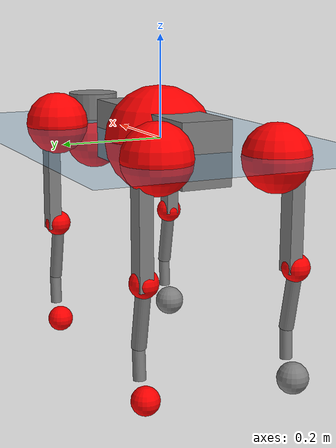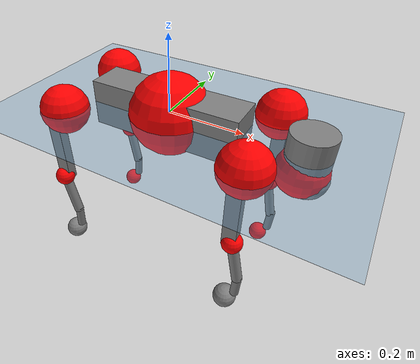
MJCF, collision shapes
<mujoco model="go2">
  <compiler angle="radian" assetdir="assets" balanceinertia="true" inertiafromgeom="false"/>

  <option timestep="0.005" density="1.2" viscosity="2e-05"/>

  <size nkey="1"/>

  <visual>
    <quality shadowsize="8192"/>
    <map shadowclip="0.5"/>
  </visual>

  <default>
    <default class="/">
      <geom contype="0" conaffinity="0" group="1" solref="-1000 -80"/>
      <site size="0.01 0.005 0.005" group="5"/>
      <general forcelimited="true" biastype="affine" gainprm="20" biasprm="0 -20 -0.5"/>
      <default class="go2">
        <joint armature="0.01" damping="0.01" frictionloss="0.2"/>
        <geom condim="1" margin="0.001"/>
        <default class="visual">
          <geom type="mesh" group="2"/>
        </default>
        <default class="collision">
          <geom group="3"/>
          <default class="foot">
            <geom size="0.022 0 0" condim="6" priority="1" friction="0.8 0.02 0.01" solimp="0.015 1 0.022"/>
          </default>
        </default>
        <default class="reward_collision_sphere">
          <geom group="5" rgba="1 0 0 1"/>
        </default>
      </default>
    </default>
  </default>

  <asset>
    <texture type="skybox" colorspace="auto" name="//unnamed_texture_0" builtin="gradient" rgb1="0.95 0.95 0.95" rgb2="0.95 0.95 0.95" width="100" height="600"/>
    <texture type="2d" colorspace="auto" name="texplane" builtin="checker" rgb1="0.345 0.575 0.748" rgb2="0.345 0.575 0.748" markrgb="1 1 1" width="512" height="512"/>
    <material name="MatPlane" class="/" texture="texplane" texuniform="true" texrepeat="2 2" specular="0.9"/>
    <material name="metal" class="/" rgba="0.9 0.95 0.95 1"/>
    <material name="black" class="/" rgba="0 0 0 1"/>
    <material name="white" class="/"/>
    <material name="gray" class="/" rgba="0.671705 0.692426 0.77427 1"/>
    <mesh name="base_0" class="/" file="base_0.obj"/>
    <mesh name="base_1" class="/" file="base_1.obj"/>
    <mesh name="base_2" class="/" file="base_2.obj"/>
    <mesh name="base_3" class="/" file="base_3.obj"/>
    <mesh name="base_4" class="/" file="base_4.obj"/>
    <mesh name="hip_0" class="/" file="hip_0.obj"/>
    <mesh name="hip_1" class="/" file="hip_1.obj"/>
    <mesh name="thigh_0" class="/" file="thigh_0.obj"/>
    <mesh name="thigh_1" class="/" file="thigh_1.obj"/>
    <mesh name="thigh_mirror_0" class="/" file="thigh_mirror_0.obj"/>
    <mesh name="thigh_mirror_1" class="/" file="thigh_mirror_1.obj"/>
    <mesh name="calf_0" class="/" file="calf_0.obj"/>
    <mesh name="calf_1" class="/" file="calf_1.obj"/>
    <mesh name="calf_mirror_0" class="/" file="calf_mirror_0.obj"/>
    <mesh name="calf_mirror_1" class="/" file="calf_mirror_1.obj"/>
    <mesh name="foot" class="/" file="foot.obj"/>
  </asset>

  <worldbody>
    <geom name="floor" class="/" size="100 100 0.125" type="plane" group="0" material="MatPlane"/>
    <light name="toplight_shadow" class="/" pos="0 0 5" dir="0.0990148 0.0990148 -0.990148" type="directional" ambient="0.04 0.04 0.04" diffuse="0.55 0.55 0.55" specular="0.12 0.12 0.12"/>
    <light name="toplight_fill" class="/" pos="0 0 5" dir="0.0990148 0.0990148 -0.990148" type="directional" castshadow="false" ambient="0.04 0.04 0.04" diffuse="0.3 0.3 0.3" specular="0.08 0.08 0.08"/>
    <body name="trunk" childclass="go2" pos="0.00249584 0.00107283 -0.00376748" quat="0.999997 -0.000960413 -0.000273665 0.00230006">
      <inertial pos="0.0395901 0.0104488 -0.000618205" quat="-0.00449337 0.713905 0.00716992 0.700191" mass="7.23386" diaginertia="0.311881 0.0821608 0.0252925"/>
      <joint name="//unnamed_joint_0" type="free" armature="0" damping="0" frictionloss="0"/>
      <geom name="//unnamed_geom_1" class="visual" material="black" mesh="base_0"/>
      <geom name="//unnamed_geom_2" class="visual" material="black" mesh="base_1"/>
      <geom name="//unnamed_geom_3" class="visual" material="black" mesh="base_2"/>
      <geom name="//unnamed_geom_4" class="visual" material="white" mesh="base_3"/>
      <geom name="//unnamed_geom_5" class="visual" material="gray" mesh="base_4"/>
      <geom name="trunk_1" class="collision" size="0.201286 0.0500273 0.0609958" type="box"/>
      <geom name="trunk_2" class="collision" size="0.0535051 0.0481546" pos="0.351505 0 0.0100945" type="cylinder"/>
      <geom name="trunk_3" class="collision" size="0.0502948" pos="0.361372 0 -0.060567"/>
      <geom name="//unnamed_geom_9" class="reward_collision_sphere" size="0.10701"/>
      <geom name="//unnamed_geom_10" class="reward_collision_sphere" size="0.0642061" pos="0.345338 0 -0.0454253"/>
      <site name="imu" pos="-0.0895633 0.000836789 0.100467" size="0.010701"/>
      <camera name="track" pos="0 -1.93501 0" quat="0.707107 0.707107 0 0" mode="trackcom"/>
      <camera name="ego_camera" pos="0.384805 0 0.0454253" quat="-0.5 -0.5 0.5 0.5"/>
      <body name="FL_hip" pos="0.247615 0.0545354 0.00916936" quat="1 7.64166e-05 0.000140417 0.000108157">
        <inertial pos="-0.00606357 0.0107142 -0.000356759" quat="0.49885 0.497322 0.505682 0.498101" mass="0.900951" diaginertia="0.00300284 0.000661388 0.000594607"/>
        <joint name="FL_hip_joint" pos="0 0 0" axis="0.999637 0.0156908 0.021911" stiffness="0.0377553" range="-1.04845 0.953731" armature="0.0112762" damping="0" frictionloss="0.295879"/>
        <geom name="//unnamed_geom_11" class="visual" material="metal" mesh="hip_0"/>
        <geom name="//unnamed_geom_12" class="visual" material="gray" mesh="hip_1"/>
        <geom name="//unnamed_geom_13" class="collision" size="0.0492247 0.021402" pos="0 0.0774004 0" quat="0.707107 0.707107 0 0" type="cylinder"/>
        <geom name="//unnamed_geom_14" class="reward_collision_sphere" size="0.0642061" pos="0 0.0677254 0"/>
        <body name="FL_thigh" pos="0.00654633 0.0800031 -0.00583398" quat="0.999985 0.0024204 0.00460492 0.00175666">
          <inertial pos="-0.00322506 -0.0211329 -0.0391864" quat="0.820006 0.0606732 -0.0542091 0.566543" mass="1.54976" diaginertia="0.016816 0.00573262 0.000882507"/>
          <joint name="FL_thigh_joint" pos="0 0 0" axis="0.0099664 0.999949 -0.00170414" range="-1.78215 3.34005" armature="0.0120407" damping="0" frictionloss="0.282853"/>
          <geom name="//unnamed_geom_15" class="visual" material="metal" mesh="thigh_0"/>
          <geom name="//unnamed_geom_16" class="visual" material="gray" mesh="thigh_1"/>
          <geom name="//unnamed_geom_17" class="collision" size="0.113966 0.0131088 0.0181917" pos="0 0 -0.107507" quat="0.707107 0 0.707107 0" type="box"/>
          <body name="FL_calf" pos="-0.00114885 -0.0109494 -0.211535" quat="0.999999 -4.5816e-06 0.00106074 -0.000181597">
            <inertial pos="0.00623716 -0.0022601 -0.137361" quat="0.708926 0.00355261 -0.010594 0.705195" mass="0.305655" diaginertia="0.00485097 0.00126074 5.53245e-05"/>
            <joint name="FL_calf_joint" pos="0 0 0" axis="0.00159033 0.999999 -0.000235527" stiffness="0.0508949" range="-2.872 -0.808033" armature="0.0089541" damping="0.0116148" frictionloss="0.229326"/>
            <geom name="//unnamed_geom_18" class="visual" material="gray" mesh="calf_0"/>
            <geom name="//unnamed_geom_19" class="visual" material="black" mesh="calf_1"/>
            <geom name="FL_calf0" class="collision" size="0.0128412 0.0642061" pos="0.00986681 0 -0.060567" quat="0.994493 0 -0.104807 0" type="cylinder"/>
            <geom name="//unnamed_geom_21" class="collision" size="0.0117711 0.0347783" pos="0.024667 0 -0.149399" quat="0.999688 0 0.0249974 0" type="cylinder"/>
            <geom name="//unnamed_geom_22" class="visual" pos="0 0 -0.215013" quat="1 0 0 0" material="black" mesh="foot"/>
            <geom name="FL_foot" class="foot" size="0.025591" pos="-0.0024667 0 -0.215013"/>
            <geom name="//unnamed_geom_24" class="reward_collision_sphere" size="0.0267526"/>
            <geom name="//unnamed_geom_25" class="reward_collision_sphere" size="0.0267526" pos="-0.0024667 0 -0.215013"/>
            <site name="FL_foot" class="foot" pos="-0.0024667 0 -0.215013" size="0.010701"/>
          </body>
        </body>
      </body>
      <body name="FR_hip" pos="0.250429 -0.0509786 0.00208685" quat="0.999999 -0.000924417 -4.09596e-05 -0.000944013">
        <inertial pos="0.000518321 0.0119341 0.00739711" quat="0.504481 0.53799 0.509264 0.443526" mass="0.815491" diaginertia="0.00277885 0.000427127 0.000550513"/>
        <joint name="FR_hip_joint" pos="0 0 0" axis="0.998878 -0.0131138 -0.0455058" range="-1.06743 1.0107" armature="0.0108085" damping="0.0483734" frictionloss="0.17072"/>
        <geom name="//unnamed_geom_26" class="visual" pos="0 -3.65413e-10 -1.56733e-08" quat="4.63268e-05 1 0 0" material="metal" mesh="hip_0"/>
        <geom name="//unnamed_geom_27" class="visual" pos="0 -5.92378e-10 3.87661e-08" quat="4.63268e-05 1 0 0" material="gray" mesh="hip_1"/>
        <geom name="//unnamed_geom_28" class="collision" size="0.0492247 0.021402" pos="0 -0.0774004 0" quat="0.707107 0.707107 0 0" type="cylinder"/>
        <geom name="//unnamed_geom_29" class="reward_collision_sphere" size="0.0642061" pos="0 -0.0677254 0"/>
        <body name="FR_thigh" pos="-0.00617112 -0.0862781 0.0100293" quat="0.999988 -0.00336255 -0.00297915 0.00213939">
          <inertial pos="-0.0163483 0.0247559 -0.0265555" quat="0.532396 -0.0283833 0.109177 0.838945" mass="1.27224" diaginertia="0.0188442 0.00566325 0.000800991"/>
          <joint name="FR_thigh_joint" pos="0 0 0" axis="-0.00128969 -0.999703 -0.0243386" range="-3.5659 1.60164" armature="0.014312" damping="0" frictionloss="0.164057"/>
          <geom name="//unnamed_geom_30" class="visual" material="metal" mesh="thigh_mirror_0"/>
          <geom name="//unnamed_geom_31" class="visual" material="gray" mesh="thigh_mirror_1"/>
          <geom name="//unnamed_geom_32" class="collision" size="0.113966 0.0131088 0.0181917" pos="0 0 -0.107507" quat="0.707107 0 0.707107 0" type="box"/>
          <body name="FR_calf" pos="0.00663343 -0.00209576 -0.217206" quat="0.999995 0.000690334 -0.00153157 -0.00276231">
            <inertial pos="0.0167433 0.000686417 -0.142065" quat="0.671781 0.025664 0.0361749 0.739421" mass="0.240142" diaginertia="0.00355018 0.00116914 5.01641e-05"/>
            <joint name="FR_calf_joint" pos="0 0 0" axis="-0.0122 -0.999638 0.0239933" stiffness="0.0573688" range="1.07595 2.8588" armature="0.00523659" damping="0" frictionloss="0.159839"/>
            <geom name="//unnamed_geom_33" class="visual" material="gray" mesh="calf_mirror_0"/>
            <geom name="//unnamed_geom_34" class="visual" material="black" mesh="calf_mirror_1"/>
            <geom name="FR_calf0" class="collision" size="0.0139113 0.0642061" pos="0.0123335 0 -0.060567" quat="0.995004 0 -0.0998334 0" type="cylinder"/>
            <geom name="//unnamed_geom_36" class="collision" size="0.0117711 0.0347783" pos="0.024667 0 -0.149399" quat="0.999688 0 0.0249974 0" type="cylinder"/>
            <geom name="//unnamed_geom_37" class="visual" pos="0 0 -0.215013" quat="1 0 0 0" material="black" mesh="foot"/>
            <geom name="FR_foot" class="foot" size="0.0315736" pos="-0.0024667 0 -0.215013"/>
            <geom name="//unnamed_geom_39" class="reward_collision_sphere" size="0.0267526"/>
            <geom name="//unnamed_geom_40" class="reward_collision_sphere" size="0.0267526" pos="-0.0024667 0 -0.215013"/>
            <site name="FR_foot" class="foot" pos="-0.0024667 0 -0.215013" size="0.010701"/>
          </body>
        </body>
      </body>
      <body name="RL_hip" pos="-0.249224 0.0529012 0.0105879" quat="1 -0.000610496 -0.000357918 0.00028269">
        <inertial pos="0.00625666 -0.00599627 0.0123" quat="0.46638 0.501971 0.52001 0.510004" mass="0.704199" diaginertia="0.00177374 0.000439886 0.000460275"/>
        <joint name="RL_hip_joint" pos="0 0 0" axis="-0.998898 0.0447605 -0.0141023" stiffness="0.0239628" range="-1.07431 0.970576" armature="0.0102282" damping="0.0636627" frictionloss="0.211338"/>
        <geom name="//unnamed_geom_41" class="visual" pos="-1.95052e-09 0 -3.82348e-07" quat="4.63268e-05 0 1 0" material="metal" mesh="hip_0"/>
        <geom name="//unnamed_geom_42" class="visual" pos="-3.16203e-09 0 -3.39088e-07" quat="4.63268e-05 0 1 0" material="gray" mesh="hip_1"/>
        <geom name="//unnamed_geom_43" class="collision" size="0.0492247 0.021402" pos="0 0.0774004 0" quat="0.707107 0.707107 0 0" type="cylinder"/>
        <geom name="//unnamed_geom_44" class="reward_collision_sphere" size="0.0642061" pos="0 0.0677254 0"/>
        <body name="RL_thigh" pos="-0.00119542 0.0969761 -0.00514152" quat="0.999998 -0.00109753 0.00172342 3.00353e-05">
          <inertial pos="0.00892203 -0.0252144 -0.0206601" quat="0.828937 0.0778884 -0.0189158 0.553569" mass="1.64213" diaginertia="0.0217356 0.00490375 0.000962724"/>
          <joint name="RL_thigh_joint" pos="0 0 0" axis="0.0166076 0.999827 0.00837128" range="-0.408325 4.68874" armature="0.00976509" damping="0.0517392" frictionloss="0.206718"/>
          <geom name="//unnamed_geom_45" class="visual" material="metal" mesh="thigh_0"/>
          <geom name="//unnamed_geom_46" class="visual" material="gray" mesh="thigh_1"/>
          <geom name="//unnamed_geom_47" class="collision" size="0.113966 0.0131088 0.0181917" pos="0 0 -0.107507" quat="0.707107 0 0.707107 0" type="box"/>
          <body name="RL_calf" pos="0.00443656 -0.00437071 -0.210476" quat="1 4.61764e-06 2.70434e-05 -0.000443796">
            <inertial pos="0.00198177 -0.0112759 -0.139309" quat="0.728446 0.0260249 -0.00658608 0.684577" mass="0.24334" diaginertia="0.00386555 0.000894684 4.43171e-05"/>
            <joint name="RL_calf_joint" pos="0 0 0" axis="0.00450626 0.999989 0.00114064" range="-2.92882 -0.678662" armature="0.00456506" damping="0" frictionloss="0.318704"/>
            <geom name="//unnamed_geom_48" class="visual" material="gray" mesh="calf_0"/>
            <geom name="//unnamed_geom_49" class="visual" material="black" mesh="calf_1"/>
            <geom name="RL_calf0" class="collision" size="0.0139113 0.0642061" pos="0.0123335 0 -0.060567" quat="0.995004 0 -0.0998334 0" type="cylinder"/>
            <geom name="//unnamed_geom_51" class="collision" size="0.0117711 0.0347783" pos="0.024667 0 -0.149399" quat="0.999688 0 0.0249974 0" type="cylinder"/>
            <geom name="//unnamed_geom_52" class="visual" pos="0 0 -0.215013" quat="1 0 0 0" material="black" mesh="foot"/>
            <geom name="RL_foot" class="foot" size="0.0196908" pos="-0.0024667 0 -0.215013"/>
            <geom name="//unnamed_geom_54" class="reward_collision_sphere" size="0.0267526"/>
            <geom name="//unnamed_geom_55" class="reward_collision_sphere" size="0.0267526" pos="-0.0024667 0 -0.215013"/>
            <site name="RL_foot" class="foot" pos="-0.0024667 0 -0.215013" size="0.010701"/>
          </body>
        </body>
      </body>
      <body name="RR_hip" pos="-0.252111 -0.0444109 -0.00463163" quat="1 -0.000166459 -0.000132137 -7.98629e-05">
        <inertial pos="0.0134297 -0.00797457 0.0120753" quat="0.481137 0.491673 0.55409 0.468775" mass="0.849427" diaginertia="0.00297445 0.000599171 0.000580871"/>
        <joint name="RR_hip_joint" pos="0 0 0" axis="-0.99838 0.00415877 -0.0567514" stiffness="0.00180229" range="-0.829606 0.927409" armature="0.0132317" damping="0.0390094" frictionloss="0.218065"/>
        <geom name="//unnamed_geom_56" class="visual" pos="1.94132e-09 -3.65413e-10 -3.66674e-07" quat="2.14617e-09 4.63268e-05 4.63268e-05 -1" material="metal" mesh="hip_0"/>
        <geom name="//unnamed_geom_57" class="visual" pos="3.1848e-09 -5.92378e-10 -3.77854e-07" quat="2.14617e-09 4.63268e-05 4.63268e-05 -1" material="gray" mesh="hip_1"/>
        <geom name="//unnamed_geom_58" class="collision" size="0.0492247 0.021402" pos="0 -0.0774004 0" quat="0.707107 0.707107 0 0" type="cylinder"/>
        <geom name="//unnamed_geom_59" class="reward_collision_sphere" size="0.0642061" pos="0 -0.0677254 0"/>
        <body name="RR_thigh" pos="-0.0124632 -0.0964555 0.0108539" quat="0.999987 0.000541231 -0.00434003 0.00243666">
          <inertial pos="-0.00363655 0.0149223 -0.0351916" quat="0.555174 -0.0224725 0.0857149 0.827001" mass="1.70603" diaginertia="0.0205434 0.00537759 0.00101"/>
          <joint name="RR_thigh_joint" pos="0 0 0" axis="-0.00476643 -0.999971 0.00594739" stiffness="0.00156637" range="-4.67312 0.587828" armature="0.0113855" damping="0" frictionloss="0.199139"/>
          <geom name="//unnamed_geom_60" class="visual" material="metal" mesh="thigh_mirror_0"/>
          <geom name="//unnamed_geom_61" class="visual" material="gray" mesh="thigh_mirror_1"/>
          <geom name="//unnamed_geom_62" class="collision" size="0.113966 0.0131088 0.0181917" pos="0 0 -0.107507" quat="0.707107 0 0.707107 0" type="box"/>
          <body name="RR_calf" pos="-0.00216747 -0.00960819 -0.214136" quat="0.999983 -0.00271242 -0.00417814 0.00300535">
            <inertial pos="-0.00179974 0.00560774 -0.145519" quat="0.717943 -0.00787705 0.0406696 0.694869" mass="0.2826" diaginertia="0.00447232 0.00123223 6.03144e-05"/>
            <joint name="RR_calf_joint" pos="0 0 0" axis="-0.0274908 -0.999587 -0.00840515" range="0.868587 2.50073" armature="0.0112406" damping="0" frictionloss="0.160677"/>
            <geom name="//unnamed_geom_63" class="visual" material="gray" mesh="calf_mirror_0"/>
            <geom name="//unnamed_geom_64" class="visual" material="black" mesh="calf_mirror_1"/>
            <geom name="RR_calf0" class="collision" size="0.0139113 0.0642061" pos="0.0123335 0 -0.060567" quat="0.995004 0 -0.0998334 0" type="cylinder"/>
            <geom name="//unnamed_geom_66" class="collision" size="0.0117711 0.0347783" pos="0.024667 0 -0.149399" quat="0.999688 0 0.0249974 0" type="cylinder"/>
            <geom name="//unnamed_geom_67" class="visual" pos="0 0 -0.215013" quat="1 0 0 0" material="black" mesh="foot"/>
            <geom name="RR_foot" class="foot" size="0.0305365" pos="-0.0024667 0 -0.215013"/>
            <geom name="//unnamed_geom_69" class="reward_collision_sphere" size="0.0267526"/>
            <geom name="//unnamed_geom_70" class="reward_collision_sphere" size="0.0267526" pos="-0.0024667 0 -0.215013"/>
            <site name="RR_foot" class="foot" pos="-0.0024667 0 -0.215013" size="0.010701"/>
          </body>
        </body>
      </body>
    </body>
  </worldbody>

  <contact>
    <pair class="/" geom1="floor" geom2="FL_foot" name="//unnamed_contact_0"/>
    <pair class="/" geom1="floor" geom2="FR_foot" name="//unnamed_contact_1"/>
    <pair class="/" geom1="floor" geom2="RL_foot" name="//unnamed_contact_2"/>
    <pair class="/" geom1="floor" geom2="RR_foot" name="//unnamed_contact_3"/>
  </contact>

  <actuator>
    <general name="FL_hip" class="/" joint="FL_hip_joint" forcerange="-34.004 34.004" gainprm="24.8667" biasprm="0 -24.8667 -0.620194"/>
    <general name="FL_thigh" class="/" joint="FL_thigh_joint" forcerange="-36.9302 36.9302" gainprm="24.8667" biasprm="0 -24.8667 -0.620194"/>
    <general name="FL_calf" class="/" joint="FL_calf_joint" forcerange="-55.2236 55.2236" gainprm="24.8667" biasprm="0 -24.8667 -0.620194"/>
    <general name="FR_hip" class="/" joint="FR_hip_joint" forcerange="-26.5862 26.5862" gainprm="24.8667" biasprm="0 -24.8667 -0.620194"/>
    <general name="FR_thigh" class="/" joint="FR_thigh_joint" forcerange="-17.6355 17.6355" gainprm="24.8667" biasprm="0 -24.8667 -0.620194"/>
    <general name="FR_calf" class="/" joint="FR_calf_joint" forcerange="-51.4283 51.4283" gainprm="24.8667" biasprm="0 -24.8667 -0.620194"/>
    <general name="RL_hip" class="/" joint="RL_hip_joint" forcerange="-24.2158 24.2158" gainprm="24.8667" biasprm="0 -24.8667 -0.620194"/>
    <general name="RL_thigh" class="/" joint="RL_thigh_joint" forcerange="-33.4802 33.4802" gainprm="24.8667" biasprm="0 -24.8667 -0.620194"/>
    <general name="RL_calf" class="/" joint="RL_calf_joint" forcerange="-41.4735 41.4735" gainprm="24.8667" biasprm="0 -24.8667 -0.620194"/>
    <general name="RR_hip" class="/" joint="RR_hip_joint" forcerange="-25.9748 25.9748" gainprm="24.8667" biasprm="0 -24.8667 -0.620194"/>
    <general name="RR_thigh" class="/" joint="RR_thigh_joint" forcerange="-15.5346 15.5346" gainprm="24.8667" biasprm="0 -24.8667 -0.620194"/>
    <general name="RR_calf" class="/" joint="RR_calf_joint" forcerange="-45.2879 45.2879" gainprm="24.8667" biasprm="0 -24.8667 -0.620194"/>
  </actuator>

  <sensor>
    <gyro site="imu" name="imu_angular_velocity"/>
    <velocimeter site="imu" name="imu_linear_velocity"/>
    <framelinvel objtype="site" objname="FL_foot" name="FL_foot_global_linear_velocity"/>
    <framelinvel objtype="site" objname="FR_foot" name="FR_foot_global_linear_velocity"/>
    <framelinvel objtype="site" objname="RL_foot" name="RL_foot_global_linear_velocity"/>
    <framelinvel objtype="site" objname="RR_foot" name="RR_foot_global_linear_velocity"/>
  </sensor>

  <keyframe>
    <key name="home" qpos="0 0 0.325 1 0 0 0 0.1 0.8 -1.5 -0.1 -0.8 1.5 -0.1 0.8 -1.5 0.1 -0.8 1.5"/>
  </keyframe>
</mujoco>
